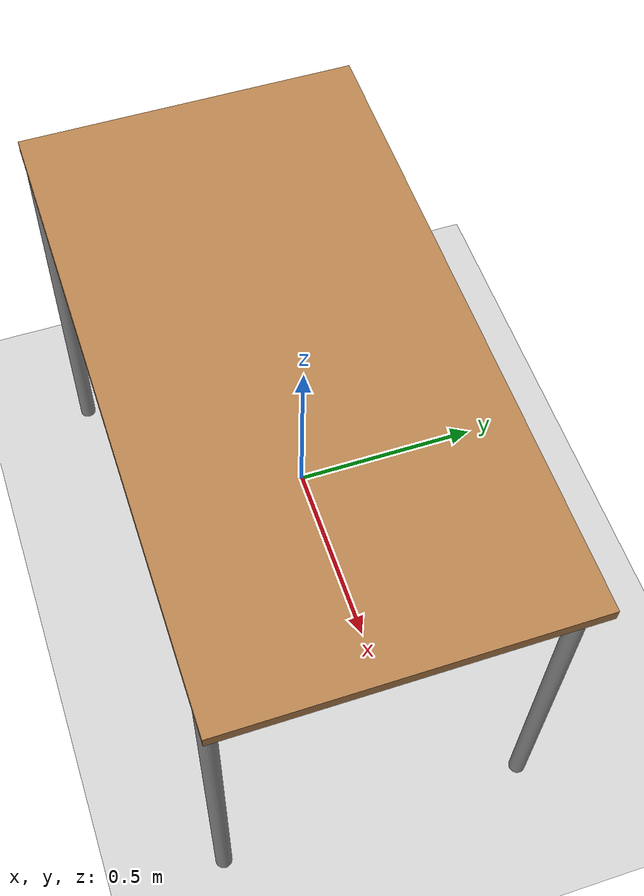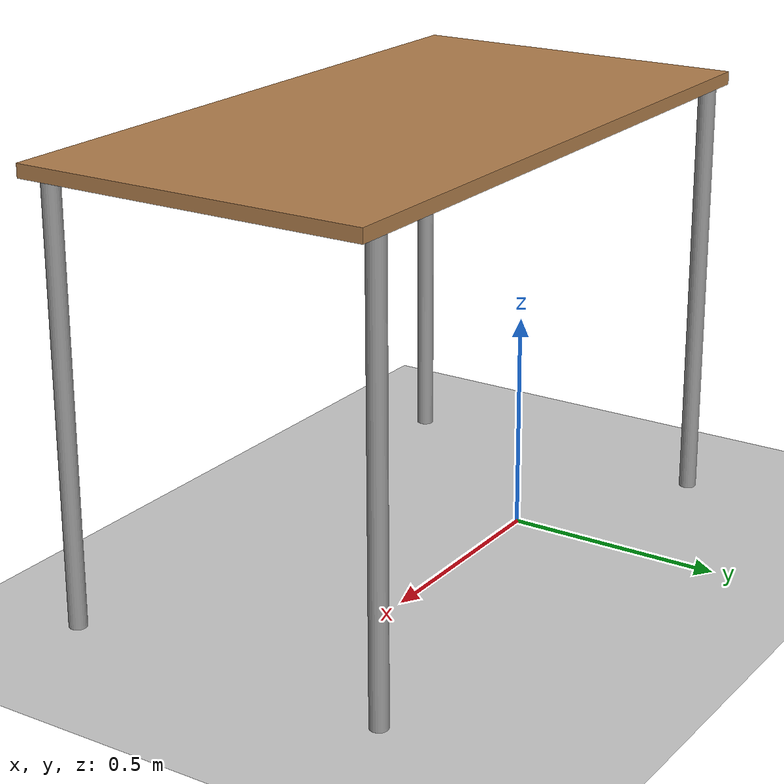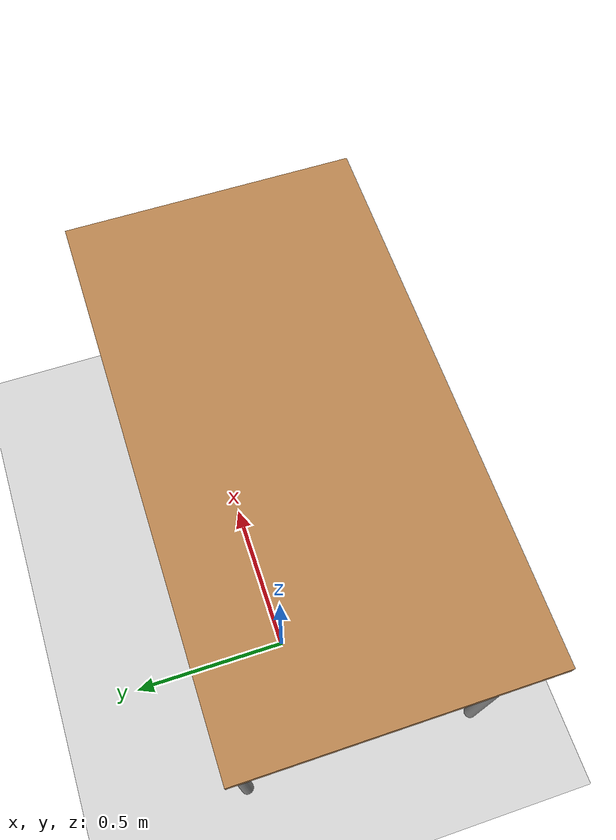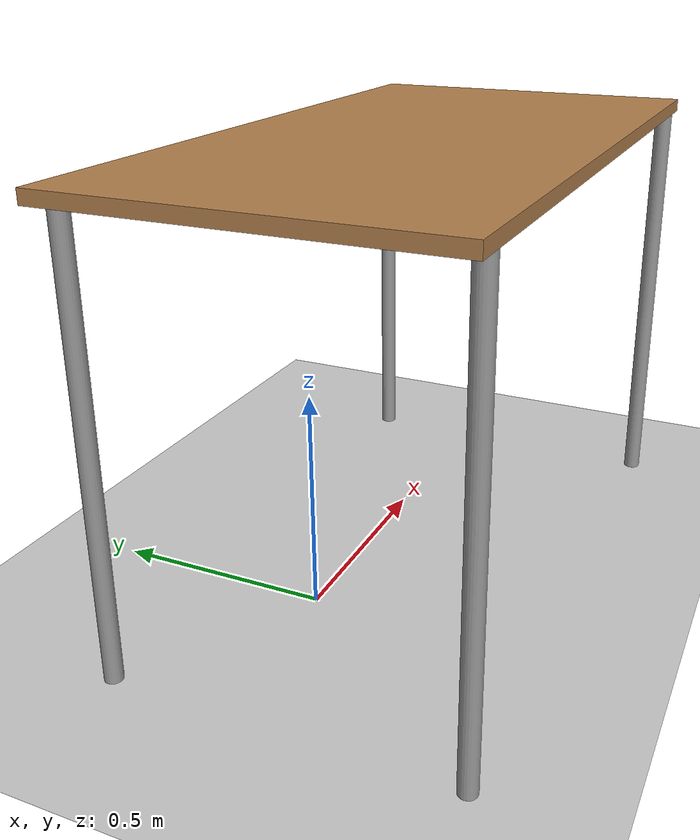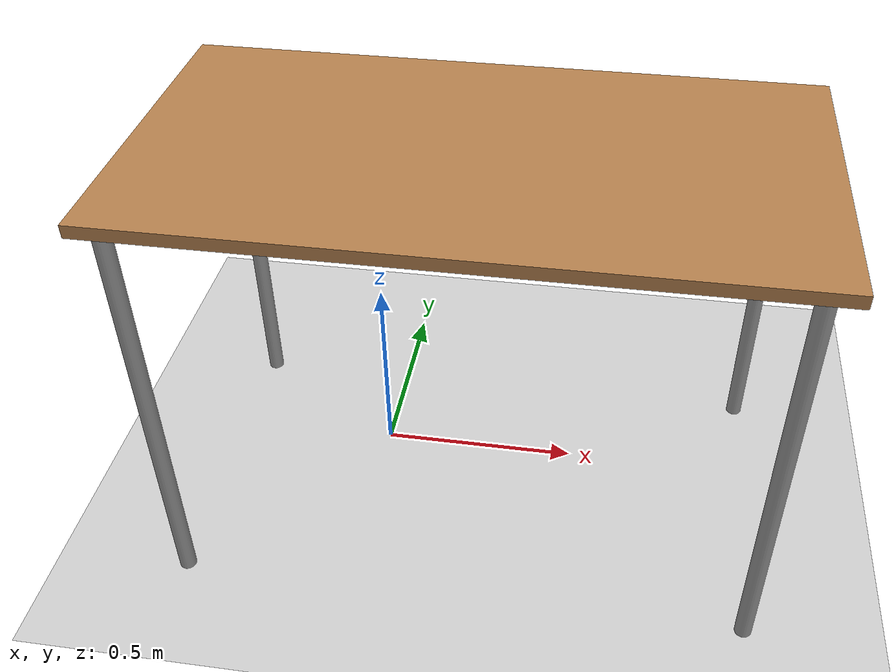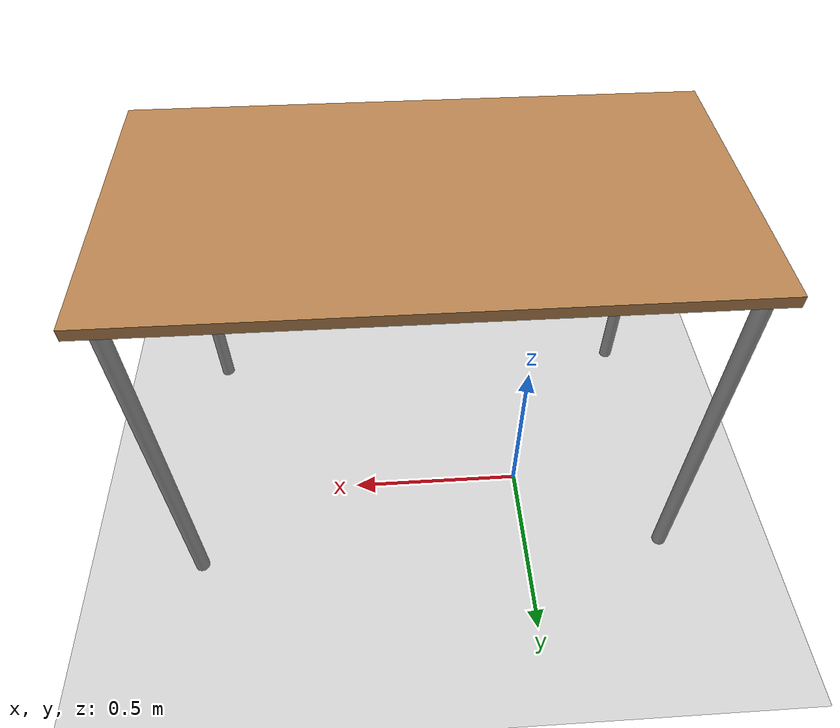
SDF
<sdf version='1.7'>
  <world name='default'>
    <light name='sun' type='directional'>
      <cast_shadows>1</cast_shadows>
      <pose>0 0 10 0 -0 0</pose>
      <diffuse>0.8 0.8 0.8 1</diffuse>
      <specular>0.2 0.2 0.2 1</specular>
      <attenuation>
        <range>1000</range>
        <constant>0.9</constant>
        <linear>0.01</linear>
        <quadratic>0.001</quadratic>
      </attenuation>
      <direction>-0.5 0.1 -0.9</direction>
      <spot>
        <inner_angle>0</inner_angle>
        <outer_angle>0</outer_angle>
        <falloff>0</falloff>
      </spot>
    </light>

    <gravity>0 0 -9.8</gravity>

    <model name='ground_plane'>
      <static>1</static>
      <include>
        <uri>model://ground_plane</uri>
      </include>
    </model>

    <model name='table'>
      <static>1</static>
      <include>
        <uri>model://table</uri>
      </include>
      <pose>0.27426 -0.133657 0 0 -0 0</pose>
    </model>

    <gui fullscreen='0'>
      <camera name='user_camera'>
        <pose>0.21593 -0.741005 2.77495 0 1.07564 1.7202</pose>
        <view_controller>orbit</view_controller>
        <projection_type>perspective</projection_type>
      </camera>
    </gui>
  </world>
</sdf>

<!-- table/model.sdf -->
<sdf version="1.5">
  <model name="table">
    <static>true</static>
    <link name="link">
      <collision name="surface">
        <pose>0 0 1.0 0 0 0</pose>
        <geometry>
          <box>
            <size>1.5 0.8 0.03</size>
          </box>
        </geometry>
        <surface>
          <friction>
            <ode>
              <mu>0.6</mu>
              <mu2>0.6</mu2>
            </ode>
          </friction>
        </surface>
      </collision>
      <visual name="visual1">
        <pose>0 0 1.0 0 0 0</pose>
        <geometry>
          <box>
            <size>1.5 0.8 0.03</size>
          </box>
        </geometry>
        <material>
          <script>
            <uri>model://media/materials/scripts/gazebo.material</uri>
            <name>Gazebo/Wood</name>
          </script>
        </material>
      </visual>
      <collision name="front_left_leg">
        <pose>0.68 0.38 0.5 0 0 0</pose>
        <geometry>
          <cylinder>
            <radius>0.02</radius>
            <length>1.0</length>
          </cylinder>
        </geometry>
      </collision>
      <visual name="front_left_leg">
        <pose>0.68 0.38 0.5 0 0 0</pose>
        <geometry>
          <cylinder>
            <radius>0.02</radius>
            <length>1.0</length>
          </cylinder>
        </geometry>
        <material>
          <script>
            <uri>model://media/materials/scripts/gazebo.material</uri>
            <name>Gazebo/Grey</name>
          </script>
        </material>
      </visual>
      <collision name="front_right_leg">
        <pose>0.68 -0.38 0.5 0 0 0</pose>
        <geometry>
          <cylinder>
            <radius>0.02</radius>
            <length>1.0</length>
          </cylinder>
        </geometry>
      </collision>
      <visual name="front_right_leg">
        <pose>0.68 -0.38 0.5 0 0 0</pose>
        <geometry>
          <cylinder>
            <radius>0.02</radius>
            <length>1.0</length>
          </cylinder>
        </geometry>
        <material>
          <script>
            <uri>model://media/materials/scripts/gazebo.material</uri>
            <name>Gazebo/Grey</name>
          </script>
        </material>
      </visual>
      <collision name="back_right_leg">
        <pose>-0.68 -0.38 0.5 0 0 0</pose>
        <geometry>
          <cylinder>
            <radius>0.02</radius>
            <length>1.0</length>
          </cylinder>
        </geometry>
      </collision>
      <visual name="back_right_leg">
        <pose>-0.68 -0.38 0.5 0 0 0</pose>
        <geometry>
          <cylinder>
            <radius>0.02</radius>
            <length>1.0</length>
          </cylinder>
        </geometry>
        <material>
          <script>
            <uri>model://media/materials/scripts/gazebo.material</uri>
            <name>Gazebo/Grey</name>
          </script>
        </material>
      </visual>
      <collision name="back_left_leg">
        <pose>-0.68 0.38 0.5 0 0 0</pose>
        <geometry>
          <cylinder>
            <radius>0.02</radius>
            <length>1.0</length>
          </cylinder>
        </geometry>
      </collision>
      <visual name="back_left_leg">
        <pose>-0.68 0.38 0.5 0 0 0</pose>
        <geometry>
          <cylinder>
            <radius>0.02</radius>
            <length>1.0</length>
          </cylinder>
        </geometry>
        <material>
          <script>
            <uri>model://media/materials/scripts/gazebo.material</uri>
            <name>Gazebo/Grey</name>
          </script>
        </material>
      </visual>
    </link>
  </model>
</sdf>
